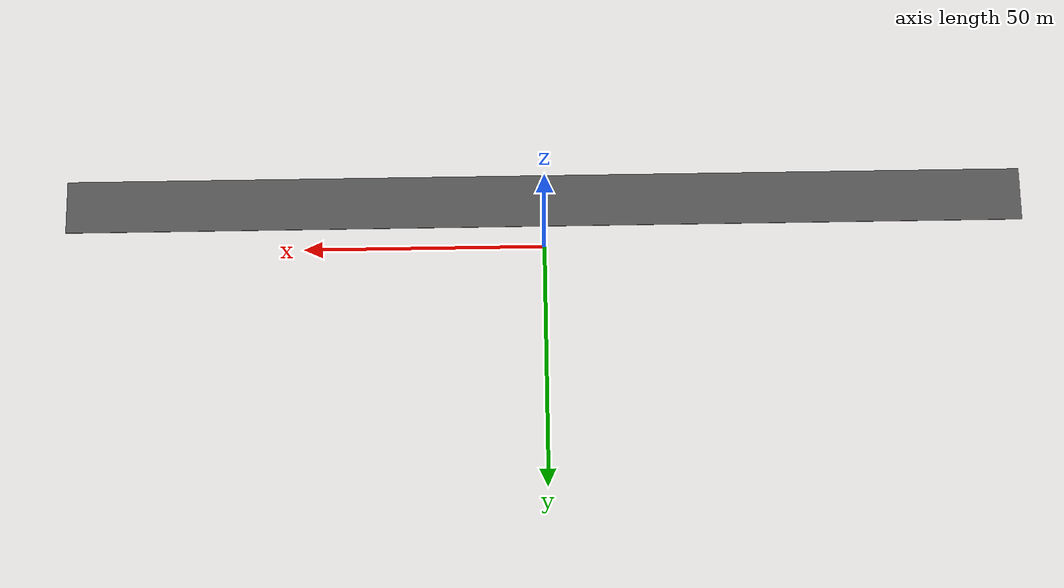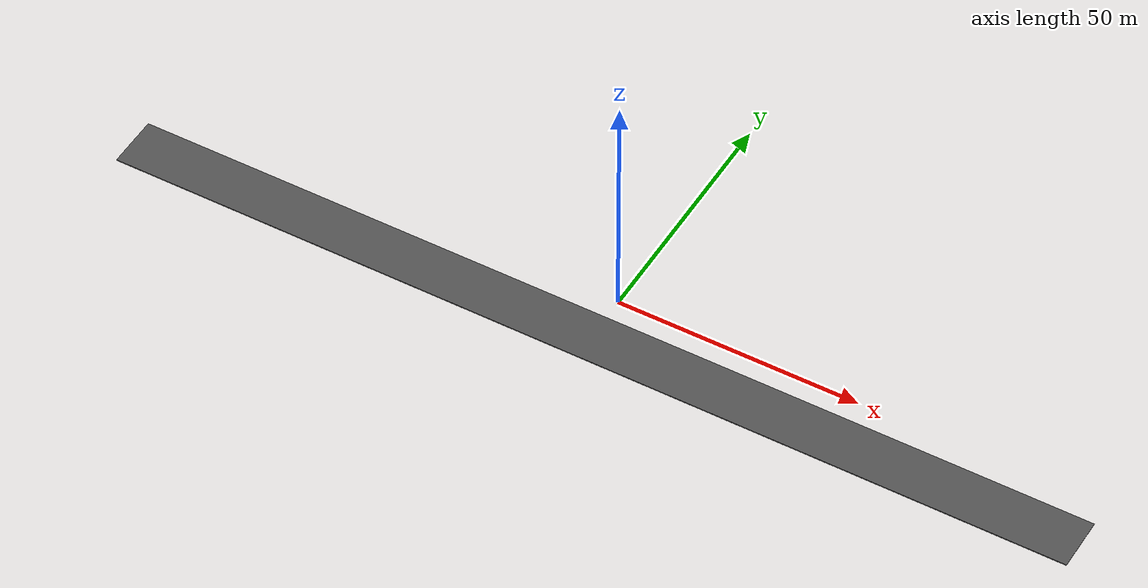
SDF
<?xml version="1.0" ?>
<sdf version="1.4">
  <model name="(DS) Straight Road - 200m">
    <static>true</static>
    <link name="link">
      <inertial>
        <pose>0 0 0 0 0 0</pose>
        <mass>1</mass>
        <inertia>
          <ixx>1</ixx>
          <iyy>1</iyy>
          <izz>1</izz>
          <ixy>0</ixy>
          <ixz>0</ixz>
        </inertia>
      </inertial>
      <collision name="collision">
        <geometry>
          <mesh>
            <uri>model://ds_straight_road_200m/meshes/straight_road_200m.dae</uri>
          </mesh>
        </geometry>
      </collision>
      <visual name="visual">
        <geometry>
          <mesh>
            <uri>model://ds_straight_road_200m/meshes/straight_road_200m.dae</uri>
          </mesh>
        </geometry>
        <material>
          <script>
            <uri>file://media/materials/scripts/ds_sim.material</uri>
            <name>DSSim/Road</name>
          </script>
        </material>
      </visual>
    </link>
  </model>
</sdf>
